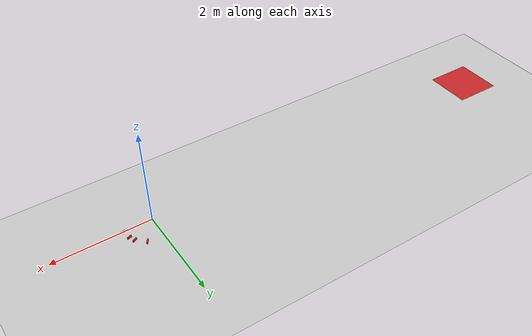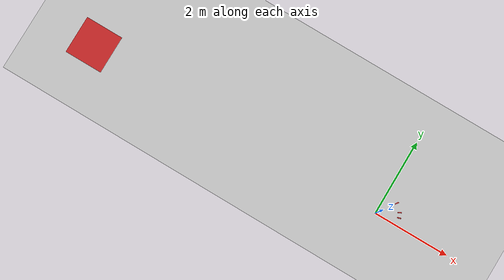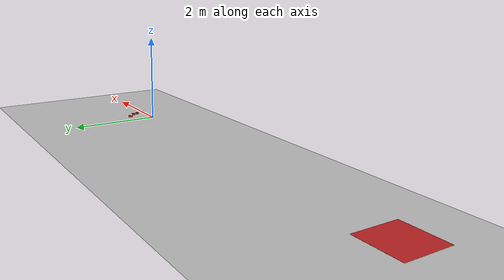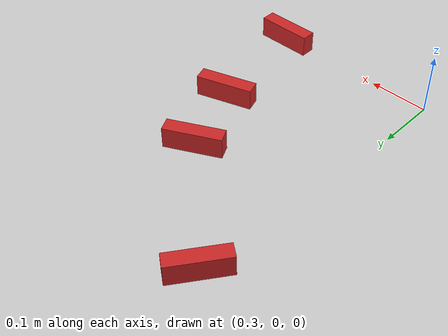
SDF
<?xml version="1.0" ?>
<sdf version="1.4">
    <world name="default">
        <!-- World Camera Settings-->
        <gui>
            <camera name="user_camera">
                <pose frame=''>24.1194 -0.328974 17.8913 0 0.683643 3.13619</pose>
                <view_controller>orbit</view_controller>
                <projection_type>perspective</projection_type>
            </camera>
        </gui>
        <!--A global light source -->
        <include>
            <uri>model://sun</uri>
            <cast_shadows>0</cast_shadows>
        </include>
        <!-- A ground plane -->
        <include>
            <uri>model://ground_plane</uri>
        </include>

         <physics type="ode">
      <real_time_update_rate>1000.0</real_time_update_rate>
      <max_step_size>0.009</max_step_size>
      <real_time_factor>1</real_time_factor>
      <ode>
        <solver>
          <type>quick</type>
          <iters>150</iters>
          <precon_iters>0</precon_iters>
          <sor>1.400000</sor>
          <use_dynamic_moi_rescaling>1</use_dynamic_moi_rescaling>
        </solver>
        <constraints>
          <cfm>0.00001</cfm>
          <erp>0.2</erp>
          <contact_max_correcting_vel>2000.000000</contact_max_correcting_vel>
          <contact_surface_layer>0.01000</contact_surface_layer>
        </constraints>
      </ode>
    </physics>

 <model name='item1'>
      <link name='link'>
        <inertial>
          <mass>0.1</mass>
          <inertia>
            <ixx>0.16667</ixx>
            <ixy>0</ixy>
            <ixz>0</ixz>
            <iyy>0.16667</iyy>
            <iyz>0</iyz>
            <izz>0.16667</izz>
          </inertia>
          <pose frame=''>0 0 0 0 -0 0</pose>
        </inertial>
        <self_collide>0</self_collide>
        <enable_wind>0</enable_wind>
        <kinematic>0</kinematic>
        <pose frame=''>0 0 0 0 -0 0</pose>
        <gravity>1</gravity>
        <visual name='visual'>
          <geometry>
            <box>
              <size>0.09433 0.024 0.07</size>
            </box>
          </geometry>
                   <material>
            <script>
              <name>Gazebo/Red</name>
              <uri>file://media/materials/scripts/gazebo.material</uri>
            </script>
            <shader type='vertex'>
              <normal_map>__default__</normal_map>
            </shader>
          </material>
          <pose frame=''>0 0 0 0 -0 0</pose>
          <transparency>0</transparency>
          <cast_shadows>1</cast_shadows>
        </visual>
        <collision name='collision'>
          <laser_retro>0</laser_retro>
          <max_contacts>50</max_contacts>
          <pose frame=''>0 0 0 0 -0 0</pose>
          <geometry>
            <box>
              <size>0.09433 0.024 0.07</size>
            </box>
          </geometry>
          <surface>
            <friction>
              <ode>
                <mu>0.998000</mu>
                <mu2>0.998000</mu2>
                <fdir1>0.000000 0.000000 0.000000</fdir1>
                <slip1>0.000000</slip1>
                <slip2>0.000000</slip2>
              </ode>
            </friction>
            <bounce>
              <restitution_coefficient>0.000000</restitution_coefficient>
              <threshold>100000.000000</threshold>
            </bounce>
            <contact>
              <ode>
                <soft_cfm>0.000000</soft_cfm>
                <soft_erp>0.200000</soft_erp>
                <kp>100000.000000</kp>
                <kd>1.000000</kd>
                <max_vel>100.000000</max_vel>
                <min_depth>0.001000</min_depth>
              </ode>
            </contact>
          </surface>
        </collision>
      </link>
      <static>0</static>
      <allow_auto_disable>0</allow_auto_disable>
      <pose frame=''>0.583518 0.007 6e-06 6e-06 -4.8e-05 -2.1e-05</pose>
    </model>
     <model name='item3'>
       <link name='link'>
        <inertial>
          <mass>0.1</mass>
          <inertia>
            <ixx>0.16667</ixx>
            <ixy>0</ixy>
            <ixz>0</ixz>
            <iyy>0.16667</iyy>
            <iyz>0</iyz>
            <izz>0.16667</izz>
          </inertia>
          <pose frame=''>0 0 0 0 -0 0</pose>
        </inertial>
        <self_collide>0</self_collide>
        <enable_wind>0</enable_wind>
        <kinematic>0</kinematic>
        <pose frame=''>0 0 0 0 -0 0</pose>
        <gravity>1</gravity>
        <visual name='visual'>
          <geometry>
            <box>
              <size>0.09433 0.024 0.07</size>
            </box>
          </geometry>
                   <material>
            <script>
              <name>Gazebo/Red</name>
              <uri>file://media/materials/scripts/gazebo.material</uri>
            </script>
            <shader type='vertex'>
              <normal_map>__default__</normal_map>
            </shader>
          </material>
          <pose frame=''>0 0 0 0 -0 0</pose>
          <transparency>0</transparency>
          <cast_shadows>1</cast_shadows>
        </visual>
        <collision name='collision'>
          <laser_retro>0</laser_retro>
          <max_contacts>50</max_contacts>
          <pose frame=''>0 0 0 0 -0 0</pose>
          <geometry>
            <box>
              <size>0.09433 0.024 0.07</size>
            </box>
          </geometry>
          <surface>
            <friction>
              <ode>
                <mu>0.998000</mu>
                <mu2>0.998000</mu2>
                <fdir1>0.000000 0.000000 0.000000</fdir1>
                <slip1>0.000000</slip1>
                <slip2>0.000000</slip2>
              </ode>
            </friction>
            <bounce>
              <restitution_coefficient>0.000000</restitution_coefficient>
              <threshold>100000.000000</threshold>
            </bounce>
            <contact>
              <ode>
                <soft_cfm>0.000000</soft_cfm>
                <soft_erp>0.200000</soft_erp>
                <kp>100000.000000</kp>
                <kd>1.000000</kd>
                <max_vel>100.000000</max_vel>
                <min_depth>0.001000</min_depth>
              </ode>
            </contact>
          </surface>
        </collision>
      </link>
      <static>0</static>
      <allow_auto_disable>0</allow_auto_disable>
      <pose frame=''>0.5020 0.314314 6e-06 6e-06 -4.8e-05 0.476497</pose>
    </model>

     <model name='item2'>
      <link name='link'>
        <inertial>
          <mass>0.1</mass>
          <inertia>
            <ixx>0.16667</ixx>
            <ixy>0</ixy>
            <ixz>0</ixz>
            <iyy>0.16667</iyy>
            <iyz>0</iyz>
            <izz>0.16667</izz>
          </inertia>
          <pose frame=''>0 0 0 0 -0 0</pose>
        </inertial>
        <self_collide>0</self_collide>
        <enable_wind>0</enable_wind>
        <kinematic>0</kinematic>
        <pose frame=''>0 0 0 0 -0 0</pose>
        <gravity>1</gravity>
        <visual name='visual'>
          <geometry>
            <box>
              <size>0.09433 0.024 0.07</size>
            </box>
          </geometry>
                   <material>
            <script>
              <name>Gazebo/Red</name>
              <uri>file://media/materials/scripts/gazebo.material</uri>
            </script>
            <shader type='vertex'>
              <normal_map>__default__</normal_map>
            </shader>
          </material>
          <pose frame=''>0 0 0 0 -0 0</pose>
          <transparency>0</transparency>
          <cast_shadows>1</cast_shadows>
        </visual>
        <collision name='collision'>
          <laser_retro>0</laser_retro>
          <max_contacts>50</max_contacts>
          <pose frame=''>0 0 0 0 -0 0</pose>
          <geometry>
            <box>
              <size>0.09433 0.024 0.07</size>
            </box>
          </geometry>
          <surface>
            <friction>
              <ode>
                <mu>0.998000</mu>
                <mu2>0.998000</mu2>
                <fdir1>0.000000 0.000000 0.000000</fdir1>
                <slip1>0.000000</slip1>
                <slip2>0.000000</slip2>
              </ode>
            </friction>
            <bounce>
              <restitution_coefficient>0.000000</restitution_coefficient>
              <threshold>100000.000000</threshold>
            </bounce>
            <contact>
              <ode>
                <soft_cfm>0.000000</soft_cfm>
                <soft_erp>0.200000</soft_erp>
                <kp>100000.000000</kp>
                <kd>1.000000</kd>
                <max_vel>100.000000</max_vel>
                <min_depth>0.001000</min_depth>
              </ode>
            </contact>
          </surface>
        </collision>
      </link>
      <static>0</static>
      <allow_auto_disable>0</allow_auto_disable>
      <pose frame=''>0.5515 0.1946 6e-06 6e-06 -4.8e-05 0.32</pose>
    </model>

<model name='item4'>
       <link name='link'>
        <inertial>
          <mass>0.1</mass>
          <inertia>
            <ixx>0.16667</ixx>
            <ixy>0</ixy>
            <ixz>0</ixz>
            <iyy>0.16667</iyy>
            <iyz>0</iyz>
            <izz>0.16667</izz>
          </inertia>
          <pose frame=''>0 0 0 0 -0 0</pose>
        </inertial>
        <self_collide>0</self_collide>
        <enable_wind>0</enable_wind>
        <kinematic>0</kinematic>
        <pose frame=''>0 0 0 0 -0 0</pose>
        <gravity>1</gravity>
        <visual name='visual'>
          <geometry>
            <box>
              <size>0.09433 0.024 0.07</size>
            </box>
          </geometry>
                   <material>
            <script>
              <name>Gazebo/Red</name>
              <uri>file://media/materials/scripts/gazebo.material</uri>
            </script>
            <shader type='vertex'>
              <normal_map>__default__</normal_map>
            </shader>
          </material>
          <pose frame=''>0 0 0 0 -0 0</pose>
          <transparency>0</transparency>
          <cast_shadows>1</cast_shadows>
        </visual>
        <collision name='collision'>
          <laser_retro>0</laser_retro>
          <max_contacts>50</max_contacts>
          <pose frame=''>0 0 0 0 -0 0</pose>
          <geometry>
            <box>
              <size>0.09433 0.024 0.07</size>
            </box>
          </geometry>
          <surface>
            <friction>
              <ode>
                <mu>0.998000</mu>
                <mu2>0.998000</mu2>
                <fdir1>0.000000 0.000000 0.000000</fdir1>
                <slip1>0.000000</slip1>
                <slip2>0.000000</slip2>
              </ode>
            </friction>
            <bounce>
              <restitution_coefficient>0.000000</restitution_coefficient>
              <threshold>100000.000000</threshold>
            </bounce>
            <contact>
              <ode>
                <soft_cfm>0.000000</soft_cfm>
                <soft_erp>0.200000</soft_erp>
                <kp>100000.000000</kp>
                <kd>1.000000</kd>
                <max_vel>100.000000</max_vel>
                <min_depth>0.001000</min_depth>
              </ode>
            </contact>
          </surface>
        </collision>
      </link>
      <static>0</static>
      <allow_auto_disable>0</allow_auto_disable>
      <pose frame=''>0.326525 0.475232 6e-06 6e-06 -4.8e-05 0.946380</pose>
    </model>

         <model name='destination'>
          <link name='link'>
        <inertial>
          <mass>0.1</mass>
          <inertia>
            <ixx>0.166667</ixx>
            <ixy>0</ixy>
            <ixz>0</ixz>
            <iyy>0.166667</iyy>
            <iyz>0</iyz>
            <izz>0.166667</izz>
          </inertia>
          <pose frame=''>0 0 0 0 -0 0</pose>
        </inertial>
        <self_collide>0</self_collide>
        <enable_wind>0</enable_wind>
        <kinematic>0</kinematic>
        <pose frame=''>0 0 0 0 -0 0</pose>
        <gravity>1</gravity>
        <visual name='visual'>
          <geometry>
            <box>
              <size>1.0 1.0 0.001</size>
            </box>
          </geometry>
        <material>
            <script>
              <name>Gazebo/Red</name>
              <uri>file://media/materials/scripts/gazebo.material</uri>
            </script>
            <shader type='vertex'>
              <normal_map>__default__</normal_map>
            </shader>
          </material>
          <pose frame=''>0 0 0 0 -0 0</pose>
          <transparency>0</transparency>
          <cast_shadows>1</cast_shadows>
        </visual>
        <collision name='collision'>
          <laser_retro>0</laser_retro>
          <max_contacts>10</max_contacts>
          <pose frame=''>0 0 0 0 -0 0</pose>
          <geometry>
            <box>
              <size>1.0 1.0 0.0</size>
            </box>
          </geometry>
          <surface>
            <friction>
              <ode>
                <mu>0.998000</mu>
                <mu2>0.998000</mu2>
                <fdir1>0.000000 0.000000 0.000000</fdir1>
                <slip1>0.000000</slip1>
                <slip2>0.000000</slip2>
              </ode>
            </friction>
            <bounce>
              <restitution_coefficient>0.000000</restitution_coefficient>
              <threshold>100000.000000</threshold>
            </bounce>
            <contact>
              <ode>
                <soft_cfm>0.000000</soft_cfm>
                <soft_erp>0.200000</soft_erp>
                <kp>100000.000000</kp>
                <kd>1.000000</kd>
                <max_vel>100.000000</max_vel>
                <min_depth>0.001000</min_depth>
              </ode>
            </contact>
          </surface>
        </collision>
      </link>
      <static>1</static>
      <allow_auto_disable>1</allow_auto_disable>
          <pose>-8.0 0.0 0.0 0 -0 0</pose>
    </model>

    </world>
</sdf>
